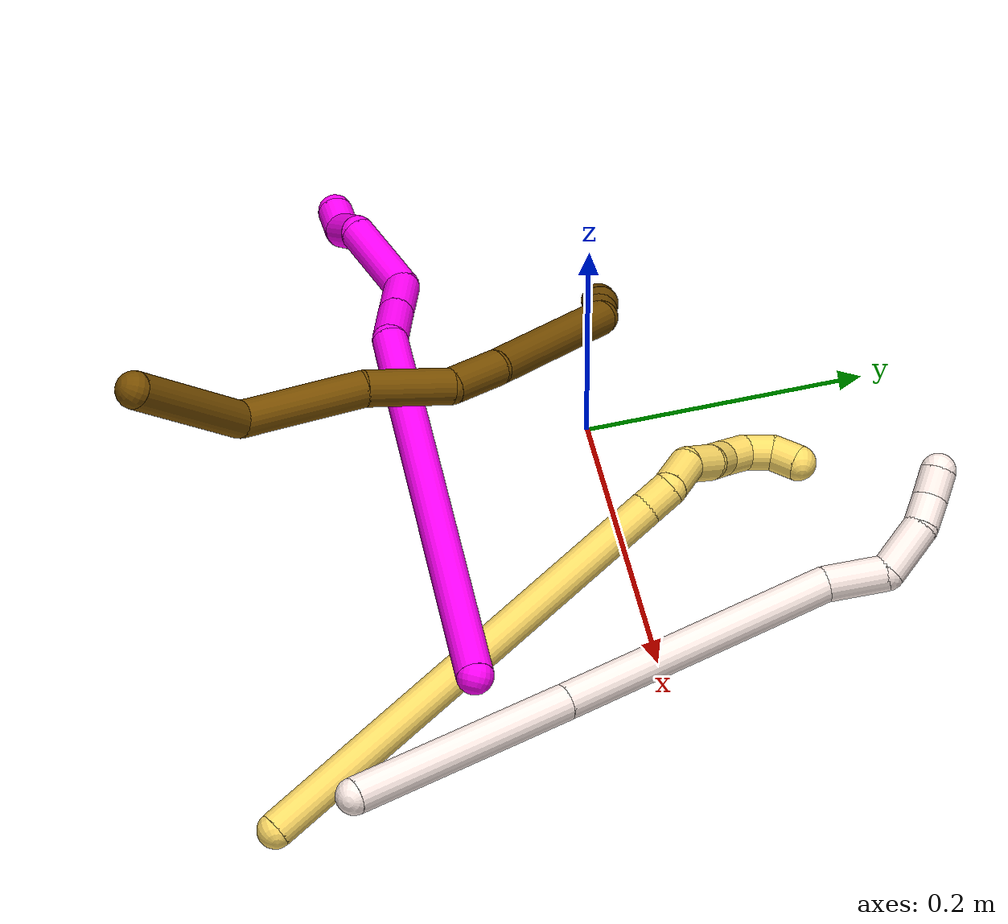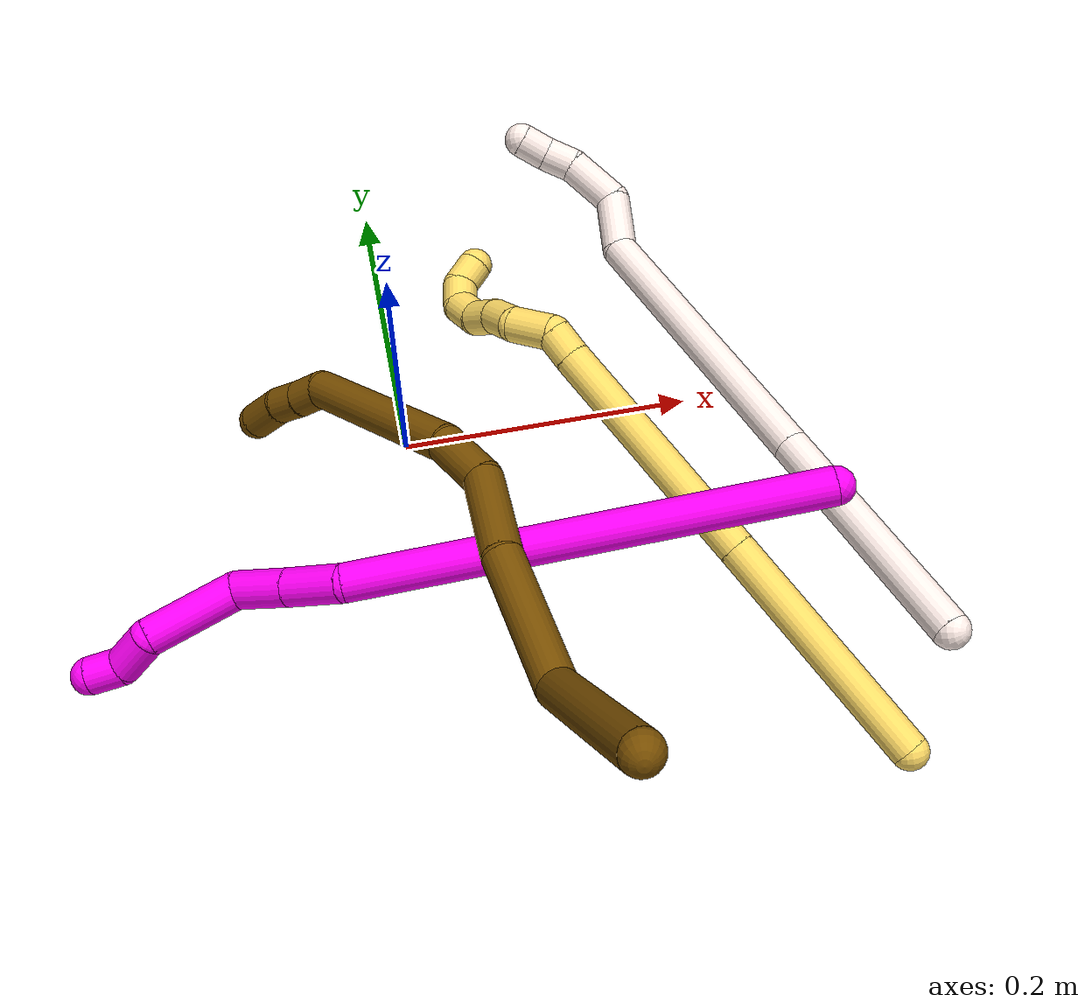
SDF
<sdf version="1.7">
 <world name="default">
  <model name="5">
   <static>0</static>
   <link name="5">
    <collision name="collision-cylinder-e_1_1_4">
     <pose>-0.065312 0.030821 -0.039168 -2.4749 -0.918962 1.92039</pose>
     <geometry><cylinder><radius>0.0125</radius><length>0.164314</length></cylinder></geometry>
     <surface>
      <friction><ode><mu>1.16</mu><mu2>1.16</mu2><slip1>0</slip1><slip2>0</slip2></ode></friction>
      <contact><ode><kp>1e+06</kp><kd>1</kd><max_vel>0</max_vel><min_depth>0.001</min_depth></ode></contact>
     </surface>
    </collision>
    <visual name="visual-cylinder-e_1_1_4">
     <pose>-0.065312 0.030821 -0.039168 -2.4749 -0.918962 1.92039</pose>
     <geometry><cylinder><radius>0.0125</radius><length>0.164314</length></cylinder></geometry>
     <material><ambient>1 0.858824 0.4 1</ambient></material>
    </visual>
    <collision name="collision-cylinder-e_2_4_5">
     <pose>-0.197448 0.093155 -0.118675 -2.47842 -0.9171 1.92355</pose>
     <geometry><cylinder><radius>0.0125</radius><length>0.168354</length></cylinder></geometry>
     <surface>
      <friction><ode><mu>1.16</mu><mu2>1.16</mu2><slip1>0</slip1><slip2>0</slip2></ode></friction>
      <contact><ode><kp>1e+06</kp><kd>1</kd><max_vel>0</max_vel><min_depth>0.001</min_depth></ode></contact>
     </surface>
    </collision>
    <visual name="visual-cylinder-e_2_4_5">
     <pose>-0.197448 0.093155 -0.118675 -2.47842 -0.9171 1.92355</pose>
     <geometry><cylinder><radius>0.0125</radius><length>0.168354</length></cylinder></geometry>
     <material><ambient>1 0.858824 0.4 1</ambient></material>
    </visual>
    <collision name="collision-cylinder-e_3_5_6">
     <pose>-0.273146 0.128251 -0.163671 -2.48575 -0.986139 2.01275</pose>
     <geometry><cylinder><radius>0.0125</radius><length>0.021285</length></cylinder></geometry>
     <surface>
      <friction><ode><mu>1.16</mu><mu2>1.16</mu2><slip1>0</slip1><slip2>0</slip2></ode></friction>
      <contact><ode><kp>1e+06</kp><kd>1</kd><max_vel>0</max_vel><min_depth>0.001</min_depth></ode></contact>
     </surface>
    </collision>
    <visual name="visual-cylinder-e_3_5_6">
     <pose>-0.273146 0.128251 -0.163671 -2.48575 -0.986139 2.01275</pose>
     <geometry><cylinder><radius>0.0125</radius><length>0.021285</length></cylinder></geometry>
     <material><ambient>1 0.858824 0.4 1</ambient></material>
    </visual>
    <collision name="collision-cylinder-e_4_6_7">
     <pose>-0.286399 0.139819 -0.181315 -2.59037 -0.279616 0.923462</pose>
     <geometry><cylinder><radius>0.0125</radius><length>0.031728</length></cylinder></geometry>
     <surface>
      <friction><ode><mu>1.16</mu><mu2>1.16</mu2><slip1>0</slip1><slip2>0</slip2></ode></friction>
      <contact><ode><kp>1e+06</kp><kd>1</kd><max_vel>0</max_vel><min_depth>0.001</min_depth></ode></contact>
     </surface>
    </collision>
    <visual name="visual-cylinder-e_4_6_7">
     <pose>-0.286399 0.139819 -0.181315 -2.59037 -0.279616 0.923462</pose>
     <geometry><cylinder><radius>0.0125</radius><length>0.031728</length></cylinder></geometry>
     <material><ambient>1 0.858824 0.4 1</ambient></material>
    </visual>
    <collision name="collision-cylinder-e_5_7_8">
     <pose>-0.293025 0.159484 -0.200844 -2.08122 -0.166364 0.282579</pose>
     <geometry><cylinder><radius>0.0125</radius><length>0.027146</length></cylinder></geometry>
     <surface>
      <friction><ode><mu>1.16</mu><mu2>1.16</mu2><slip1>0</slip1><slip2>0</slip2></ode></friction>
      <contact><ode><kp>1e+06</kp><kd>1</kd><max_vel>0</max_vel><min_depth>0.001</min_depth></ode></contact>
     </surface>
    </collision>
    <visual name="visual-cylinder-e_5_7_8">
     <pose>-0.293025 0.159484 -0.200844 -2.08122 -0.166364 0.282579</pose>
     <geometry><cylinder><radius>0.0125</radius><length>0.027146</length></cylinder></geometry>
     <material><ambient>1 0.858824 0.4 1</ambient></material>
    </visual>
    <collision name="collision-cylinder-e_6_8_9">
     <pose>-0.294848 0.179962 -0.215185 -2.29612 0.036137 -0.080294</pose>
     <geometry><cylinder><radius>0.0125</radius><length>0.023534</length></cylinder></geometry>
     <surface>
      <friction><ode><mu>1.16</mu><mu2>1.16</mu2><slip1>0</slip1><slip2>0</slip2></ode></friction>
      <contact><ode><kp>1e+06</kp><kd>1</kd><max_vel>0</max_vel><min_depth>0.001</min_depth></ode></contact>
     </surface>
    </collision>
    <visual name="visual-cylinder-e_6_8_9">
     <pose>-0.294848 0.179962 -0.215185 -2.29612 0.036137 -0.080294</pose>
     <geometry><cylinder><radius>0.0125</radius><length>0.023534</length></cylinder></geometry>
     <material><ambient>1 0.858824 0.4 1</ambient></material>
    </visual>
    <collision name="collision-cylinder-e_7_9_10">
     <pose>-0.298494 0.198034 -0.228547 -2.11106 -0.360116 0.622016</pose>
     <geometry><cylinder><radius>0.0125</radius><length>0.023108</length></cylinder></geometry>
     <surface>
      <friction><ode><mu>1.16</mu><mu2>1.16</mu2><slip1>0</slip1><slip2>0</slip2></ode></friction>
      <contact><ode><kp>1e+06</kp><kd>1</kd><max_vel>0</max_vel><min_depth>0.001</min_depth></ode></contact>
     </surface>
    </collision>
    <visual name="visual-cylinder-e_7_9_10">
     <pose>-0.298494 0.198034 -0.228547 -2.11106 -0.360116 0.622016</pose>
     <geometry><cylinder><radius>0.0125</radius><length>0.023108</length></cylinder></geometry>
     <material><ambient>1 0.858824 0.4 1</ambient></material>
    </visual>
    <collision name="collision-cylinder-e_8_10_11">
     <pose>-0.308992 0.215057 -0.233419 -1.48204 -0.690357 0.635683</pose>
     <geometry><cylinder><radius>0.0125</radius><length>0.020183</length></cylinder></geometry>
     <surface>
      <friction><ode><mu>1.16</mu><mu2>1.16</mu2><slip1>0</slip1><slip2>0</slip2></ode></friction>
      <contact><ode><kp>1e+06</kp><kd>1</kd><max_vel>0</max_vel><min_depth>0.001</min_depth></ode></contact>
     </surface>
    </collision>
    <visual name="visual-cylinder-e_8_10_11">
     <pose>-0.308992 0.215057 -0.233419 -1.48204 -0.690357 0.635683</pose>
     <geometry><cylinder><radius>0.0125</radius><length>0.020183</length></cylinder></geometry>
     <material><ambient>1 0.858824 0.4 1</ambient></material>
    </visual>
    <collision name="collision-cylinder-e_9_11_2">
     <pose>-0.320966 0.228298 -0.226204 -0.69951 -0.576754 0.215565</pose>
     <geometry><cylinder><radius>0.0125</radius><length>0.020348</length></cylinder></geometry>
     <surface>
      <friction><ode><mu>1.16</mu><mu2>1.16</mu2><slip1>0</slip1><slip2>0</slip2></ode></friction>
      <contact><ode><kp>1e+06</kp><kd>1</kd><max_vel>0</max_vel><min_depth>0.001</min_depth></ode></contact>
     </surface>
    </collision>
    <visual name="visual-cylinder-e_9_11_2">
     <pose>-0.320966 0.228298 -0.226204 -0.69951 -0.576754 0.215565</pose>
     <geometry><cylinder><radius>0.0125</radius><length>0.020348</length></cylinder></geometry>
     <material><ambient>1 0.858824 0.4 1</ambient></material>
    </visual>
    <collision name="collision-sphere-2">
     <pose>-0.326514 0.233789 -0.219678 0 -0 0</pose>
     <geometry><sphere><radius>0.0125</radius></sphere></geometry>
     <surface>
      <friction><ode><mu>1.16</mu><mu2>1.16</mu2><slip1>0</slip1><slip2>0</slip2></ode></friction>
      <contact><ode><kp>1e+06</kp><kd>1</kd><max_vel>0</max_vel><min_depth>0.001</min_depth></ode></contact>
     </surface>
    </collision>
    <visual name="visual-sphere-2">
     <pose>-0.326514 0.233789 -0.219678 0 -0 0</pose>
     <geometry><sphere><radius>0.0125</radius></sphere></geometry>
     <material><ambient>1 0.858824 0.4 1</ambient></material>
    </visual>
    <collision name="collision-sphere-11">
     <pose>-0.315418 0.222808 -0.232729 0 -0 0</pose>
     <geometry><sphere><radius>0.0125</radius></sphere></geometry>
     <surface>
      <friction><ode><mu>1.16</mu><mu2>1.16</mu2><slip1>0</slip1><slip2>0</slip2></ode></friction>
      <contact><ode><kp>1e+06</kp><kd>1</kd><max_vel>0</max_vel><min_depth>0.001</min_depth></ode></contact>
     </surface>
    </collision>
    <visual name="visual-sphere-11">
     <pose>-0.315418 0.222808 -0.232729 0 -0 0</pose>
     <geometry><sphere><radius>0.0125</radius></sphere></geometry>
     <material><ambient>1 0.858824 0.4 1</ambient></material>
    </visual>
    <collision name="collision-sphere-10">
     <pose>-0.302565 0.207307 -0.234109 0 -0 0</pose>
     <geometry><sphere><radius>0.0125</radius></sphere></geometry>
     <surface>
      <friction><ode><mu>1.16</mu><mu2>1.16</mu2><slip1>0</slip1><slip2>0</slip2></ode></friction>
      <contact><ode><kp>1e+06</kp><kd>1</kd><max_vel>0</max_vel><min_depth>0.001</min_depth></ode></contact>
     </surface>
    </collision>
    <visual name="visual-sphere-10">
     <pose>-0.302565 0.207307 -0.234109 0 -0 0</pose>
     <geometry><sphere><radius>0.0125</radius></sphere></geometry>
     <material><ambient>1 0.858824 0.4 1</ambient></material>
    </visual>
    <collision name="collision-sphere-9">
     <pose>-0.294423 0.188762 -0.222985 0 -0 0</pose>
     <geometry><sphere><radius>0.0125</radius></sphere></geometry>
     <surface>
      <friction><ode><mu>1.16</mu><mu2>1.16</mu2><slip1>0</slip1><slip2>0</slip2></ode></friction>
      <contact><ode><kp>1e+06</kp><kd>1</kd><max_vel>0</max_vel><min_depth>0.001</min_depth></ode></contact>
     </surface>
    </collision>
    <visual name="visual-sphere-9">
     <pose>-0.294423 0.188762 -0.222985 0 -0 0</pose>
     <geometry><sphere><radius>0.0125</radius></sphere></geometry>
     <material><ambient>1 0.858824 0.4 1</ambient></material>
    </visual>
    <collision name="collision-sphere-4">
     <pose>-0.130625 0.061642 -0.078335 0 -0 0</pose>
     <geometry><sphere><radius>0.0125</radius></sphere></geometry>
     <surface>
      <friction><ode><mu>1.16</mu><mu2>1.16</mu2><slip1>0</slip1><slip2>0</slip2></ode></friction>
      <contact><ode><kp>1e+06</kp><kd>1</kd><max_vel>0</max_vel><min_depth>0.001</min_depth></ode></contact>
     </surface>
    </collision>
    <visual name="visual-sphere-4">
     <pose>-0.130625 0.061642 -0.078335 0 -0 0</pose>
     <geometry><sphere><radius>0.0125</radius></sphere></geometry>
     <material><ambient>1 0.858824 0.4 1</ambient></material>
    </visual>
    <collision name="collision-sphere-1">
     <geometry><sphere><radius>0.0125</radius></sphere></geometry>
     <surface>
      <friction><ode><mu>1.16</mu><mu2>1.16</mu2><slip1>0</slip1><slip2>0</slip2></ode></friction>
      <contact><ode><kp>1e+06</kp><kd>1</kd><max_vel>0</max_vel><min_depth>0.001</min_depth></ode></contact>
     </surface>
    </collision>
    <visual name="visual-sphere-1">
     <geometry><sphere><radius>0.0125</radius></sphere></geometry>
     <material><ambient>1 0.858824 0.4 1</ambient></material>
    </visual>
    <collision name="collision-sphere-8">
     <pose>-0.295273 0.171163 -0.207384 0 -0 0</pose>
     <geometry><sphere><radius>0.0125</radius></sphere></geometry>
     <surface>
      <friction><ode><mu>1.16</mu><mu2>1.16</mu2><slip1>0</slip1><slip2>0</slip2></ode></friction>
      <contact><ode><kp>1e+06</kp><kd>1</kd><max_vel>0</max_vel><min_depth>0.001</min_depth></ode></contact>
     </surface>
    </collision>
    <visual name="visual-sphere-8">
     <pose>-0.295273 0.171163 -0.207384 0 -0 0</pose>
     <geometry><sphere><radius>0.0125</radius></sphere></geometry>
     <material><ambient>1 0.858824 0.4 1</ambient></material>
    </visual>
    <collision name="collision-sphere-5">
     <pose>-0.264271 0.124669 -0.159015 0 -0 0</pose>
     <geometry><sphere><radius>0.0125</radius></sphere></geometry>
     <surface>
      <friction><ode><mu>1.16</mu><mu2>1.16</mu2><slip1>0</slip1><slip2>0</slip2></ode></friction>
      <contact><ode><kp>1e+06</kp><kd>1</kd><max_vel>0</max_vel><min_depth>0.001</min_depth></ode></contact>
     </surface>
    </collision>
    <visual name="visual-sphere-5">
     <pose>-0.264271 0.124669 -0.159015 0 -0 0</pose>
     <geometry><sphere><radius>0.0125</radius></sphere></geometry>
     <material><ambient>1 0.858824 0.4 1</ambient></material>
    </visual>
    <collision name="collision-sphere-6">
     <pose>-0.282021 0.131833 -0.168326 0 -0 0</pose>
     <geometry><sphere><radius>0.0125</radius></sphere></geometry>
     <surface>
      <friction><ode><mu>1.16</mu><mu2>1.16</mu2><slip1>0</slip1><slip2>0</slip2></ode></friction>
      <contact><ode><kp>1e+06</kp><kd>1</kd><max_vel>0</max_vel><min_depth>0.001</min_depth></ode></contact>
     </surface>
    </collision>
    <visual name="visual-sphere-6">
     <pose>-0.282021 0.131833 -0.168326 0 -0 0</pose>
     <geometry><sphere><radius>0.0125</radius></sphere></geometry>
     <material><ambient>1 0.858824 0.4 1</ambient></material>
    </visual>
    <collision name="collision-sphere-7">
     <pose>-0.290778 0.147805 -0.194305 0 -0 0</pose>
     <geometry><sphere><radius>0.0125</radius></sphere></geometry>
     <surface>
      <friction><ode><mu>1.16</mu><mu2>1.16</mu2><slip1>0</slip1><slip2>0</slip2></ode></friction>
      <contact><ode><kp>1e+06</kp><kd>1</kd><max_vel>0</max_vel><min_depth>0.001</min_depth></ode></contact>
     </surface>
    </collision>
    <visual name="visual-sphere-7">
     <pose>-0.290778 0.147805 -0.194305 0 -0 0</pose>
     <geometry><sphere><radius>0.0125</radius></sphere></geometry>
     <material><ambient>1 0.858824 0.4 1</ambient></material>
    </visual>
    <inertial>
     <pose>-0.186864 0.10008 -0.121527 0 -0 0</pose>
     <mass>0.5</mass>
     <inertia>
      <ixx>0.000273</ixx>
      <ixy>0</ixy>
      <ixz>0</ixz>
      <iyy>0.001039</iyy>
      <iyz>0</iyz>
      <izz>0.000306</izz>
     </inertia>
    </inertial>
   </link>
   <pose>0.274342 -0.27783 0.01149 -1.3294 0.71789 -1.46657</pose>
  </model>
  <model name="10">
   <static>0</static>
   <link name="10">
    <collision name="collision-cylinder-e_1_1_4">
     <pose>-0.11334 0.008781 0.103404 -0.08472 -0.829421 0.037315</pose>
     <geometry><cylinder><radius>0.0125</radius><length>0.307347</length></cylinder></geometry>
     <surface>
      <friction><ode><mu>1.16</mu><mu2>1.16</mu2><slip1>0</slip1><slip2>0</slip2></ode></friction>
      <contact><ode><kp>1e+06</kp><kd>1</kd><max_vel>0</max_vel><min_depth>0.001</min_depth></ode></contact>
     </surface>
    </collision>
    <visual name="visual-cylinder-e_1_1_4">
     <pose>-0.11334 0.008781 0.103404 -0.08472 -0.829421 0.037315</pose>
     <geometry><cylinder><radius>0.0125</radius><length>0.307347</length></cylinder></geometry>
     <material><ambient>1 0 0.964706 1</ambient></material>
    </visual>
    <collision name="collision-cylinder-e_2_4_5">
     <pose>-0.241118 0.026192 0.217191 -0.693426 -0.818916 0.311073</pose>
     <geometry><cylinder><radius>0.0125</radius><length>0.039533</length></cylinder></geometry>
     <surface>
      <friction><ode><mu>1.16</mu><mu2>1.16</mu2><slip1>0</slip1><slip2>0</slip2></ode></friction>
      <contact><ode><kp>1e+06</kp><kd>1</kd><max_vel>0</max_vel><min_depth>0.001</min_depth></ode></contact>
     </surface>
    </collision>
    <visual name="visual-cylinder-e_2_4_5">
     <pose>-0.241118 0.026192 0.217191 -0.693426 -0.818916 0.311073</pose>
     <geometry><cylinder><radius>0.0125</radius><length>0.039533</length></cylinder></geometry>
     <material><ambient>1 0 0.964706 1</ambient></material>
    </visual>
    <collision name="collision-cylinder-e_3_5_6">
     <pose>-0.269585 0.043387 0.238329 -0.672541 -0.795453 0.291615</pose>
     <geometry><cylinder><radius>0.0125</radius><length>0.039287</length></cylinder></geometry>
     <surface>
      <friction><ode><mu>1.16</mu><mu2>1.16</mu2><slip1>0</slip1><slip2>0</slip2></ode></friction>
      <contact><ode><kp>1e+06</kp><kd>1</kd><max_vel>0</max_vel><min_depth>0.001</min_depth></ode></contact>
     </surface>
    </collision>
    <visual name="visual-cylinder-e_3_5_6">
     <pose>-0.269585 0.043387 0.238329 -0.672541 -0.795453 0.291615</pose>
     <geometry><cylinder><radius>0.0125</radius><length>0.039287</length></cylinder></geometry>
     <material><ambient>1 0 0.964706 1</ambient></material>
    </visual>
    <collision name="collision-cylinder-e_4_6_7">
     <pose>-0.308872 0.043847 0.265192 0.466269 -0.950795 -0.243262</pose>
     <geometry><cylinder><radius>0.0125</radius><length>0.062068</length></cylinder></geometry>
     <surface>
      <friction><ode><mu>1.16</mu><mu2>1.16</mu2><slip1>0</slip1><slip2>0</slip2></ode></friction>
      <contact><ode><kp>1e+06</kp><kd>1</kd><max_vel>0</max_vel><min_depth>0.001</min_depth></ode></contact>
     </surface>
    </collision>
    <visual name="visual-cylinder-e_4_6_7">
     <pose>-0.308872 0.043847 0.265192 0.466269 -0.950795 -0.243262</pose>
     <geometry><cylinder><radius>0.0125</radius><length>0.062068</length></cylinder></geometry>
     <material><ambient>1 0 0.964706 1</ambient></material>
    </visual>
    <collision name="collision-cylinder-e_5_7_8">
     <pose>-0.348556 0.037999 0.281867 -1.32424 -1.41075 1.17198</pose>
     <geometry><cylinder><radius>0.0125</radius><length>0.029226</length></cylinder></geometry>
     <surface>
      <friction><ode><mu>1.16</mu><mu2>1.16</mu2><slip1>0</slip1><slip2>0</slip2></ode></friction>
      <contact><ode><kp>1e+06</kp><kd>1</kd><max_vel>0</max_vel><min_depth>0.001</min_depth></ode></contact>
     </surface>
    </collision>
    <visual name="visual-cylinder-e_5_7_8">
     <pose>-0.348556 0.037999 0.281867 -1.32424 -1.41075 1.17198</pose>
     <geometry><cylinder><radius>0.0125</radius><length>0.029226</length></cylinder></geometry>
     <material><ambient>1 0 0.964706 1</ambient></material>
    </visual>
    <collision name="collision-cylinder-e_6_8_2">
     <pose>-0.372114 0.040968 0.289 -0.107912 -0.944784 0.05518</pose>
     <geometry><cylinder><radius>0.0125</radius><length>0.02254</length></cylinder></geometry>
     <surface>
      <friction><ode><mu>1.16</mu><mu2>1.16</mu2><slip1>0</slip1><slip2>0</slip2></ode></friction>
      <contact><ode><kp>1e+06</kp><kd>1</kd><max_vel>0</max_vel><min_depth>0.001</min_depth></ode></contact>
     </surface>
    </collision>
    <visual name="visual-cylinder-e_6_8_2">
     <pose>-0.372114 0.040968 0.289 -0.107912 -0.944784 0.05518</pose>
     <geometry><cylinder><radius>0.0125</radius><length>0.02254</length></cylinder></geometry>
     <material><ambient>1 0 0.964706 1</ambient></material>
    </visual>
    <collision name="collision-sphere-2">
     <pose>-0.381247 0.041679 0.295565 0 -0 0</pose>
     <geometry><sphere><radius>0.0125</radius></sphere></geometry>
     <surface>
      <friction><ode><mu>1.16</mu><mu2>1.16</mu2><slip1>0</slip1><slip2>0</slip2></ode></friction>
      <contact><ode><kp>1e+06</kp><kd>1</kd><max_vel>0</max_vel><min_depth>0.001</min_depth></ode></contact>
     </surface>
    </collision>
    <visual name="visual-sphere-2">
     <pose>-0.381247 0.041679 0.295565 0 -0 0</pose>
     <geometry><sphere><radius>0.0125</radius></sphere></geometry>
     <material><ambient>1 0 0.964706 1</ambient></material>
    </visual>
    <collision name="collision-sphere-4">
     <pose>-0.226681 0.017563 0.206808 0 -0 0</pose>
     <geometry><sphere><radius>0.0125</radius></sphere></geometry>
     <surface>
      <friction><ode><mu>1.16</mu><mu2>1.16</mu2><slip1>0</slip1><slip2>0</slip2></ode></friction>
      <contact><ode><kp>1e+06</kp><kd>1</kd><max_vel>0</max_vel><min_depth>0.001</min_depth></ode></contact>
     </surface>
    </collision>
    <visual name="visual-sphere-4">
     <pose>-0.226681 0.017563 0.206808 0 -0 0</pose>
     <geometry><sphere><radius>0.0125</radius></sphere></geometry>
     <material><ambient>1 0 0.964706 1</ambient></material>
    </visual>
    <collision name="collision-sphere-1">
     <geometry><sphere><radius>0.0125</radius></sphere></geometry>
     <surface>
      <friction><ode><mu>1.16</mu><mu2>1.16</mu2><slip1>0</slip1><slip2>0</slip2></ode></friction>
      <contact><ode><kp>1e+06</kp><kd>1</kd><max_vel>0</max_vel><min_depth>0.001</min_depth></ode></contact>
     </surface>
    </collision>
    <visual name="visual-sphere-1">
     <geometry><sphere><radius>0.0125</radius></sphere></geometry>
     <material><ambient>1 0 0.964706 1</ambient></material>
    </visual>
    <collision name="collision-sphere-8">
     <pose>-0.362982 0.040257 0.282435 0 -0 0</pose>
     <geometry><sphere><radius>0.0125</radius></sphere></geometry>
     <surface>
      <friction><ode><mu>1.16</mu><mu2>1.16</mu2><slip1>0</slip1><slip2>0</slip2></ode></friction>
      <contact><ode><kp>1e+06</kp><kd>1</kd><max_vel>0</max_vel><min_depth>0.001</min_depth></ode></contact>
     </surface>
    </collision>
    <visual name="visual-sphere-8">
     <pose>-0.362982 0.040257 0.282435 0 -0 0</pose>
     <geometry><sphere><radius>0.0125</radius></sphere></geometry>
     <material><ambient>1 0 0.964706 1</ambient></material>
    </visual>
    <collision name="collision-sphere-5">
     <pose>-0.255556 0.034821 0.227574 0 -0 0</pose>
     <geometry><sphere><radius>0.0125</radius></sphere></geometry>
     <surface>
      <friction><ode><mu>1.16</mu><mu2>1.16</mu2><slip1>0</slip1><slip2>0</slip2></ode></friction>
      <contact><ode><kp>1e+06</kp><kd>1</kd><max_vel>0</max_vel><min_depth>0.001</min_depth></ode></contact>
     </surface>
    </collision>
    <visual name="visual-sphere-5">
     <pose>-0.255556 0.034821 0.227574 0 -0 0</pose>
     <geometry><sphere><radius>0.0125</radius></sphere></geometry>
     <material><ambient>1 0 0.964706 1</ambient></material>
    </visual>
    <collision name="collision-sphere-6">
     <pose>-0.283614 0.051953 0.249085 0 -0 0</pose>
     <geometry><sphere><radius>0.0125</radius></sphere></geometry>
     <surface>
      <friction><ode><mu>1.16</mu><mu2>1.16</mu2><slip1>0</slip1><slip2>0</slip2></ode></friction>
      <contact><ode><kp>1e+06</kp><kd>1</kd><max_vel>0</max_vel><min_depth>0.001</min_depth></ode></contact>
     </surface>
    </collision>
    <visual name="visual-sphere-6">
     <pose>-0.283614 0.051953 0.249085 0 -0 0</pose>
     <geometry><sphere><radius>0.0125</radius></sphere></geometry>
     <material><ambient>1 0 0.964706 1</ambient></material>
    </visual>
    <collision name="collision-sphere-7">
     <pose>-0.33413 0.03574 0.281299 0 -0 0</pose>
     <geometry><sphere><radius>0.0125</radius></sphere></geometry>
     <surface>
      <friction><ode><mu>1.16</mu><mu2>1.16</mu2><slip1>0</slip1><slip2>0</slip2></ode></friction>
      <contact><ode><kp>1e+06</kp><kd>1</kd><max_vel>0</max_vel><min_depth>0.001</min_depth></ode></contact>
     </surface>
    </collision>
    <visual name="visual-sphere-7">
     <pose>-0.33413 0.03574 0.281299 0 -0 0</pose>
     <geometry><sphere><radius>0.0125</radius></sphere></geometry>
     <material><ambient>1 0 0.964706 1</ambient></material>
    </visual>
    <inertial>
     <pose>-0.185406 0.020389 0.161884 0 -0 0</pose>
     <mass>0.5</mass>
     <inertia>
      <ixx>0.001695</ixx>
      <ixy>0</ixy>
      <ixz>0</ixz>
      <iyy>0.002529</iyy>
      <iyz>0</iyz>
      <izz>0.001709</izz>
     </inertia>
    </inertial>
   </link>
   <pose>0.249989 -0.136526 0.11102 -0.831368 -0.654944 0.540518</pose>
  </model>
  <model name="11">
   <static>0</static>
   <link name="11">
    <collision name="collision-cylinder-e_1_1_4">
     <pose>0.010602 0.056573 -0.056802 -2.35822 0.131486 -0.316144</pose>
     <geometry><cylinder><radius>0.0125</radius><length>0.161733</length></cylinder></geometry>
     <surface>
      <friction><ode><mu>1.16</mu><mu2>1.16</mu2><slip1>0</slip1><slip2>0</slip2></ode></friction>
      <contact><ode><kp>1e+06</kp><kd>1</kd><max_vel>0</max_vel><min_depth>0.001</min_depth></ode></contact>
     </surface>
    </collision>
    <visual name="visual-cylinder-e_1_1_4">
     <pose>0.010602 0.056573 -0.056802 -2.35822 0.131486 -0.316144</pose>
     <geometry><cylinder><radius>0.0125</radius><length>0.161733</length></cylinder></geometry>
     <material><ambient>1 0.933333 0.909804 1</ambient></material>
    </visual>
    <collision name="collision-cylinder-e_2_4_5">
     <pose>0.034388 0.18763 -0.187987 -2.35551 0.124596 -0.298661</pose>
     <geometry><cylinder><radius>0.0125</radius><length>0.212173</length></cylinder></geometry>
     <surface>
      <friction><ode><mu>1.16</mu><mu2>1.16</mu2><slip1>0</slip1><slip2>0</slip2></ode></friction>
      <contact><ode><kp>1e+06</kp><kd>1</kd><max_vel>0</max_vel><min_depth>0.001</min_depth></ode></contact>
     </surface>
    </collision>
    <visual name="visual-cylinder-e_2_4_5">
     <pose>0.034388 0.18763 -0.187987 -2.35551 0.124596 -0.298661</pose>
     <geometry><cylinder><radius>0.0125</radius><length>0.212173</length></cylinder></geometry>
     <material><ambient>1 0.933333 0.909804 1</ambient></material>
    </visual>
    <collision name="collision-cylinder-e_3_5_6">
     <pose>0.05394 0.281767 -0.268648 -1.88004 0.299366 -0.407283</pose>
     <geometry><cylinder><radius>0.0125</radius><length>0.043186</length></cylinder></geometry>
     <surface>
      <friction><ode><mu>1.16</mu><mu2>1.16</mu2><slip1>0</slip1><slip2>0</slip2></ode></friction>
      <contact><ode><kp>1e+06</kp><kd>1</kd><max_vel>0</max_vel><min_depth>0.001</min_depth></ode></contact>
     </surface>
    </collision>
    <visual name="visual-cylinder-e_3_5_6">
     <pose>0.05394 0.281767 -0.268648 -1.88004 0.299366 -0.407283</pose>
     <geometry><cylinder><radius>0.0125</radius><length>0.043186</length></cylinder></geometry>
     <material><ambient>1 0.933333 0.909804 1</ambient></material>
    </visual>
    <collision name="collision-cylinder-e_4_6_7">
     <pose>0.052908 0.315768 -0.286684 -2.2573 -0.379612 0.77103</pose>
     <geometry><cylinder><radius>0.0125</radius><length>0.039942</length></cylinder></geometry>
     <surface>
      <friction><ode><mu>1.16</mu><mu2>1.16</mu2><slip1>0</slip1><slip2>0</slip2></ode></friction>
      <contact><ode><kp>1e+06</kp><kd>1</kd><max_vel>0</max_vel><min_depth>0.001</min_depth></ode></contact>
     </surface>
    </collision>
    <visual name="visual-cylinder-e_4_6_7">
     <pose>0.052908 0.315768 -0.286684 -2.2573 -0.379612 0.77103</pose>
     <geometry><cylinder><radius>0.0125</radius><length>0.039942</length></cylinder></geometry>
     <material><ambient>1 0.933333 0.909804 1</ambient></material>
    </visual>
    <collision name="collision-cylinder-e_5_7_8">
     <pose>0.039359 0.335382 -0.30581 -2.52103 -0.596401 1.52854</pose>
     <geometry><cylinder><radius>0.0125</radius><length>0.021894</length></cylinder></geometry>
     <surface>
      <friction><ode><mu>1.16</mu><mu2>1.16</mu2><slip1>0</slip1><slip2>0</slip2></ode></friction>
      <contact><ode><kp>1e+06</kp><kd>1</kd><max_vel>0</max_vel><min_depth>0.001</min_depth></ode></contact>
     </surface>
    </collision>
    <visual name="visual-cylinder-e_5_7_8">
     <pose>0.039359 0.335382 -0.30581 -2.52103 -0.596401 1.52854</pose>
     <geometry><cylinder><radius>0.0125</radius><length>0.021894</length></cylinder></geometry>
     <material><ambient>1 0.933333 0.909804 1</ambient></material>
    </visual>
    <collision name="collision-cylinder-e_6_8_2">
     <pose>0.026388 0.346411 -0.31877 -2.34117 -0.704294 1.43041</pose>
     <geometry><cylinder><radius>0.0125</radius><length>0.021072</length></cylinder></geometry>
     <surface>
      <friction><ode><mu>1.16</mu><mu2>1.16</mu2><slip1>0</slip1><slip2>0</slip2></ode></friction>
      <contact><ode><kp>1e+06</kp><kd>1</kd><max_vel>0</max_vel><min_depth>0.001</min_depth></ode></contact>
     </surface>
    </collision>
    <visual name="visual-cylinder-e_6_8_2">
     <pose>0.026388 0.346411 -0.31877 -2.34117 -0.704294 1.43041</pose>
     <geometry><cylinder><radius>0.0125</radius><length>0.021072</length></cylinder></geometry>
     <material><ambient>1 0.933333 0.909804 1</ambient></material>
    </visual>
    <collision name="collision-sphere-2">
     <pose>0.019566 0.352173 -0.324362 0 -0 0</pose>
     <geometry><sphere><radius>0.0125</radius></sphere></geometry>
     <surface>
      <friction><ode><mu>1.16</mu><mu2>1.16</mu2><slip1>0</slip1><slip2>0</slip2></ode></friction>
      <contact><ode><kp>1e+06</kp><kd>1</kd><max_vel>0</max_vel><min_depth>0.001</min_depth></ode></contact>
     </surface>
    </collision>
    <visual name="visual-sphere-2">
     <pose>0.019566 0.352173 -0.324362 0 -0 0</pose>
     <geometry><sphere><radius>0.0125</radius></sphere></geometry>
     <material><ambient>1 0.933333 0.909804 1</ambient></material>
    </visual>
    <collision name="collision-sphere-4">
     <pose>0.021204 0.113146 -0.113604 0 -0 0</pose>
     <geometry><sphere><radius>0.0125</radius></sphere></geometry>
     <surface>
      <friction><ode><mu>1.16</mu><mu2>1.16</mu2><slip1>0</slip1><slip2>0</slip2></ode></friction>
      <contact><ode><kp>1e+06</kp><kd>1</kd><max_vel>0</max_vel><min_depth>0.001</min_depth></ode></contact>
     </surface>
    </collision>
    <visual name="visual-sphere-4">
     <pose>0.021204 0.113146 -0.113604 0 -0 0</pose>
     <geometry><sphere><radius>0.0125</radius></sphere></geometry>
     <material><ambient>1 0.933333 0.909804 1</ambient></material>
    </visual>
    <collision name="collision-sphere-1">
     <geometry><sphere><radius>0.0125</radius></sphere></geometry>
     <surface>
      <friction><ode><mu>1.16</mu><mu2>1.16</mu2><slip1>0</slip1><slip2>0</slip2></ode></friction>
      <contact><ode><kp>1e+06</kp><kd>1</kd><max_vel>0</max_vel><min_depth>0.001</min_depth></ode></contact>
     </surface>
    </collision>
    <visual name="visual-sphere-1">
     <geometry><sphere><radius>0.0125</radius></sphere></geometry>
     <material><ambient>1 0.933333 0.909804 1</ambient></material>
    </visual>
    <collision name="collision-sphere-8">
     <pose>0.03321 0.340649 -0.313179 0 -0 0</pose>
     <geometry><sphere><radius>0.0125</radius></sphere></geometry>
     <surface>
      <friction><ode><mu>1.16</mu><mu2>1.16</mu2><slip1>0</slip1><slip2>0</slip2></ode></friction>
      <contact><ode><kp>1e+06</kp><kd>1</kd><max_vel>0</max_vel><min_depth>0.001</min_depth></ode></contact>
     </surface>
    </collision>
    <visual name="visual-sphere-8">
     <pose>0.03321 0.340649 -0.313179 0 -0 0</pose>
     <geometry><sphere><radius>0.0125</radius></sphere></geometry>
     <material><ambient>1 0.933333 0.909804 1</ambient></material>
    </visual>
    <collision name="collision-sphere-5">
     <pose>0.047572 0.262114 -0.262369 0 -0 0</pose>
     <geometry><sphere><radius>0.0125</radius></sphere></geometry>
     <surface>
      <friction><ode><mu>1.16</mu><mu2>1.16</mu2><slip1>0</slip1><slip2>0</slip2></ode></friction>
      <contact><ode><kp>1e+06</kp><kd>1</kd><max_vel>0</max_vel><min_depth>0.001</min_depth></ode></contact>
     </surface>
    </collision>
    <visual name="visual-sphere-5">
     <pose>0.047572 0.262114 -0.262369 0 -0 0</pose>
     <geometry><sphere><radius>0.0125</radius></sphere></geometry>
     <material><ambient>1 0.933333 0.909804 1</ambient></material>
    </visual>
    <collision name="collision-sphere-6">
     <pose>0.060308 0.301421 -0.274927 0 -0 0</pose>
     <geometry><sphere><radius>0.0125</radius></sphere></geometry>
     <surface>
      <friction><ode><mu>1.16</mu><mu2>1.16</mu2><slip1>0</slip1><slip2>0</slip2></ode></friction>
      <contact><ode><kp>1e+06</kp><kd>1</kd><max_vel>0</max_vel><min_depth>0.001</min_depth></ode></contact>
     </surface>
    </collision>
    <visual name="visual-sphere-6">
     <pose>0.060308 0.301421 -0.274927 0 -0 0</pose>
     <geometry><sphere><radius>0.0125</radius></sphere></geometry>
     <material><ambient>1 0.933333 0.909804 1</ambient></material>
    </visual>
    <collision name="collision-sphere-7">
     <pose>0.045507 0.330116 -0.298442 0 -0 0</pose>
     <geometry><sphere><radius>0.0125</radius></sphere></geometry>
     <surface>
      <friction><ode><mu>1.16</mu><mu2>1.16</mu2><slip1>0</slip1><slip2>0</slip2></ode></friction>
      <contact><ode><kp>1e+06</kp><kd>1</kd><max_vel>0</max_vel><min_depth>0.001</min_depth></ode></contact>
     </surface>
    </collision>
    <visual name="visual-sphere-7">
     <pose>0.045507 0.330116 -0.298442 0 -0 0</pose>
     <geometry><sphere><radius>0.0125</radius></sphere></geometry>
     <material><ambient>1 0.933333 0.909804 1</ambient></material>
    </visual>
    <inertial>
     <pose>0.029743 0.176766 -0.171075 0 -0 0</pose>
     <mass>0.5</mass>
     <inertia><ixx>0.000773</ixx><ixy>0</ixy><ixz>0</ixz><iyy>-0.00107</iyy><iyz>0</iyz><izz>-0.001</izz></inertia>
    </inertial>
   </link>
   <pose>0.300431 -0.227928 0.07843 0.697105 0.646904 0.381754</pose>
  </model>
  <model name="12">
   <static>0</static>
   <link name="12">
    <collision name="collision-cylinder-e_1_1_4">
     <pose>-0.020168 0.000826 -0.051569 -3.12557 -0.372756 3.05669</pose>
     <geometry><cylinder><radius>0.0125</radius><length>0.110757</length></cylinder></geometry>
     <surface>
      <friction><ode><mu>1.16</mu><mu2>1.16</mu2><slip1>0</slip1><slip2>0</slip2></ode></friction>
      <contact><ode><kp>1e+06</kp><kd>1</kd><max_vel>0</max_vel><min_depth>0.001</min_depth></ode></contact>
     </surface>
    </collision>
    <visual name="visual-cylinder-e_1_1_4">
     <pose>-0.020168 0.000826 -0.051569 -3.12557 -0.372756 3.05669</pose>
     <geometry><cylinder><radius>0.0125</radius><length>0.110757</length></cylinder></geometry>
     <material><ambient>0.466667 0.301961 0 1</ambient></material>
    </visual>
    <collision name="collision-cylinder-e_2_4_5">
     <pose>-0.033755 0.025388 -0.139384 -2.56181 0.15073 -0.495852</pose>
     <geometry><cylinder><radius>0.0125</radius><length>0.087646</length></cylinder></geometry>
     <surface>
      <friction><ode><mu>1.16</mu><mu2>1.16</mu2><slip1>0</slip1><slip2>0</slip2></ode></friction>
      <contact><ode><kp>1e+06</kp><kd>1</kd><max_vel>0</max_vel><min_depth>0.001</min_depth></ode></contact>
     </surface>
    </collision>
    <visual name="visual-cylinder-e_2_4_5">
     <pose>-0.033755 0.025388 -0.139384 -2.56181 0.15073 -0.495852</pose>
     <geometry><cylinder><radius>0.0125</radius><length>0.087646</length></cylinder></geometry>
     <material><ambient>0.466667 0.301961 0 1</ambient></material>
    </visual>
    <collision name="collision-cylinder-e_3_5_6">
     <pose>-0.021673 0.059953 -0.203721 -2.77366 0.180754 -0.90645</pose>
     <geometry><cylinder><radius>0.0125</radius><length>0.06121</length></cylinder></geometry>
     <surface>
      <friction><ode><mu>1.16</mu><mu2>1.16</mu2><slip1>0</slip1><slip2>0</slip2></ode></friction>
      <contact><ode><kp>1e+06</kp><kd>1</kd><max_vel>0</max_vel><min_depth>0.001</min_depth></ode></contact>
     </surface>
    </collision>
    <visual name="visual-cylinder-e_3_5_6">
     <pose>-0.021673 0.059953 -0.203721 -2.77366 0.180754 -0.90645</pose>
     <geometry><cylinder><radius>0.0125</radius><length>0.06121</length></cylinder></geometry>
     <material><ambient>0.466667 0.301961 0 1</ambient></material>
    </visual>
    <collision name="collision-cylinder-e_4_6_7">
     <pose>-0.020345 0.081879 -0.248827 -2.56365 -0.202674 0.659129</pose>
     <geometry><cylinder><radius>0.0125</radius><length>0.041476</length></cylinder></geometry>
     <surface>
      <friction><ode><mu>1.16</mu><mu2>1.16</mu2><slip1>0</slip1><slip2>0</slip2></ode></friction>
      <contact><ode><kp>1e+06</kp><kd>1</kd><max_vel>0</max_vel><min_depth>0.001</min_depth></ode></contact>
     </surface>
    </collision>
    <visual name="visual-cylinder-e_4_6_7">
     <pose>-0.020345 0.081879 -0.248827 -2.56365 -0.202674 0.659129</pose>
     <geometry><cylinder><radius>0.0125</radius><length>0.041476</length></cylinder></geometry>
     <material><ambient>0.466667 0.301961 0 1</ambient></material>
    </visual>
    <collision name="collision-cylinder-e_5_7_8">
     <pose>-0.052682 0.12127 -0.317081 -2.63708 -0.448443 1.44871</pose>
     <geometry><cylinder><radius>0.0125</radius><length>0.12991</length></cylinder></geometry>
     <surface>
      <friction><ode><mu>1.16</mu><mu2>1.16</mu2><slip1>0</slip1><slip2>0</slip2></ode></friction>
      <contact><ode><kp>1e+06</kp><kd>1</kd><max_vel>0</max_vel><min_depth>0.001</min_depth></ode></contact>
     </surface>
    </collision>
    <visual name="visual-cylinder-e_5_7_8">
     <pose>-0.052682 0.12127 -0.317081 -2.63708 -0.448443 1.44871</pose>
     <geometry><cylinder><radius>0.0125</radius><length>0.12991</length></cylinder></geometry>
     <material><ambient>0.466667 0.301961 0 1</ambient></material>
    </visual>
    <collision name="collision-cylinder-e_6_8_9">
     <pose>-0.089972 0.151666 -0.373291 -2.74151 -1.03688 2.45864</pose>
     <geometry><cylinder><radius>0.0125</radius><length>0.021208</length></cylinder></geometry>
     <surface>
      <friction><ode><mu>1.16</mu><mu2>1.16</mu2><slip1>0</slip1><slip2>0</slip2></ode></friction>
      <contact><ode><kp>1e+06</kp><kd>1</kd><max_vel>0</max_vel><min_depth>0.001</min_depth></ode></contact>
     </surface>
    </collision>
    <visual name="visual-cylinder-e_6_8_9">
     <pose>-0.089972 0.151666 -0.373291 -2.74151 -1.03688 2.45864</pose>
     <geometry><cylinder><radius>0.0125</radius><length>0.021208</length></cylinder></geometry>
     <material><ambient>0.466667 0.301961 0 1</ambient></material>
    </visual>
    <collision name="collision-cylinder-e_7_9_10">
     <pose>-0.107414 0.156358 -0.383233 -2.66125 -0.977565 2.27851</pose>
     <geometry><cylinder><radius>0.0125</radius><length>0.020054</length></cylinder></geometry>
     <surface>
      <friction><ode><mu>1.16</mu><mu2>1.16</mu2><slip1>0</slip1><slip2>0</slip2></ode></friction>
      <contact><ode><kp>1e+06</kp><kd>1</kd><max_vel>0</max_vel><min_depth>0.001</min_depth></ode></contact>
     </surface>
    </collision>
    <visual name="visual-cylinder-e_7_9_10">
     <pose>-0.107414 0.156358 -0.383233 -2.66125 -0.977565 2.27851</pose>
     <geometry><cylinder><radius>0.0125</radius><length>0.020054</length></cylinder></geometry>
     <material><ambient>0.466667 0.301961 0 1</ambient></material>
    </visual>
    <collision name="collision-cylinder-e_8_10_2">
     <pose>-0.127741 0.159614 -0.395103 -3.04542 -1.04754 2.97534</pose>
     <geometry><cylinder><radius>0.0125</radius><length>0.027739</length></cylinder></geometry>
     <surface>
      <friction><ode><mu>1.16</mu><mu2>1.16</mu2><slip1>0</slip1><slip2>0</slip2></ode></friction>
      <contact><ode><kp>1e+06</kp><kd>1</kd><max_vel>0</max_vel><min_depth>0.001</min_depth></ode></contact>
     </surface>
    </collision>
    <visual name="visual-cylinder-e_8_10_2">
     <pose>-0.127741 0.159614 -0.395103 -3.04542 -1.04754 2.97534</pose>
     <geometry><cylinder><radius>0.0125</radius><length>0.027739</length></cylinder></geometry>
     <material><ambient>0.466667 0.301961 0 1</ambient></material>
    </visual>
    <collision name="collision-sphere-2">
     <pose>-0.139755 0.160279 -0.402001 0 -0 0</pose>
     <geometry><sphere><radius>0.0125</radius></sphere></geometry>
     <surface>
      <friction><ode><mu>1.16</mu><mu2>1.16</mu2><slip1>0</slip1><slip2>0</slip2></ode></friction>
      <contact><ode><kp>1e+06</kp><kd>1</kd><max_vel>0</max_vel><min_depth>0.001</min_depth></ode></contact>
     </surface>
    </collision>
    <visual name="visual-sphere-2">
     <pose>-0.139755 0.160279 -0.402001 0 -0 0</pose>
     <geometry><sphere><radius>0.0125</radius></sphere></geometry>
     <material><ambient>0.466667 0.301961 0 1</ambient></material>
    </visual>
    <collision name="collision-sphere-10">
     <pose>-0.115728 0.158948 -0.388204 0 -0 0</pose>
     <geometry><sphere><radius>0.0125</radius></sphere></geometry>
     <surface>
      <friction><ode><mu>1.16</mu><mu2>1.16</mu2><slip1>0</slip1><slip2>0</slip2></ode></friction>
      <contact><ode><kp>1e+06</kp><kd>1</kd><max_vel>0</max_vel><min_depth>0.001</min_depth></ode></contact>
     </surface>
    </collision>
    <visual name="visual-sphere-10">
     <pose>-0.115728 0.158948 -0.388204 0 -0 0</pose>
     <geometry><sphere><radius>0.0125</radius></sphere></geometry>
     <material><ambient>0.466667 0.301961 0 1</ambient></material>
    </visual>
    <collision name="collision-sphere-9">
     <pose>-0.0991 0.153768 -0.378262 0 -0 0</pose>
     <geometry><sphere><radius>0.0125</radius></sphere></geometry>
     <surface>
      <friction><ode><mu>1.16</mu><mu2>1.16</mu2><slip1>0</slip1><slip2>0</slip2></ode></friction>
      <contact><ode><kp>1e+06</kp><kd>1</kd><max_vel>0</max_vel><min_depth>0.001</min_depth></ode></contact>
     </surface>
    </collision>
    <visual name="visual-sphere-9">
     <pose>-0.0991 0.153768 -0.378262 0 -0 0</pose>
     <geometry><sphere><radius>0.0125</radius></sphere></geometry>
     <material><ambient>0.466667 0.301961 0 1</ambient></material>
    </visual>
    <collision name="collision-sphere-4">
     <pose>-0.040336 0.001652 -0.103138 0 -0 0</pose>
     <geometry><sphere><radius>0.0125</radius></sphere></geometry>
     <surface>
      <friction><ode><mu>1.16</mu><mu2>1.16</mu2><slip1>0</slip1><slip2>0</slip2></ode></friction>
      <contact><ode><kp>1e+06</kp><kd>1</kd><max_vel>0</max_vel><min_depth>0.001</min_depth></ode></contact>
     </surface>
    </collision>
    <visual name="visual-sphere-4">
     <pose>-0.040336 0.001652 -0.103138 0 -0 0</pose>
     <geometry><sphere><radius>0.0125</radius></sphere></geometry>
     <material><ambient>0.466667 0.301961 0 1</ambient></material>
    </visual>
    <collision name="collision-sphere-1">
     <geometry><sphere><radius>0.0125</radius></sphere></geometry>
     <surface>
      <friction><ode><mu>1.16</mu><mu2>1.16</mu2><slip1>0</slip1><slip2>0</slip2></ode></friction>
      <contact><ode><kp>1e+06</kp><kd>1</kd><max_vel>0</max_vel><min_depth>0.001</min_depth></ode></contact>
     </surface>
    </collision>
    <visual name="visual-sphere-1">
     <geometry><sphere><radius>0.0125</radius></sphere></geometry>
     <material><ambient>0.466667 0.301961 0 1</ambient></material>
    </visual>
    <collision name="collision-sphere-8">
     <pose>-0.080844 0.149564 -0.368321 0 -0 0</pose>
     <geometry><sphere><radius>0.0125</radius></sphere></geometry>
     <surface>
      <friction><ode><mu>1.16</mu><mu2>1.16</mu2><slip1>0</slip1><slip2>0</slip2></ode></friction>
      <contact><ode><kp>1e+06</kp><kd>1</kd><max_vel>0</max_vel><min_depth>0.001</min_depth></ode></contact>
     </surface>
    </collision>
    <visual name="visual-sphere-8">
     <pose>-0.080844 0.149564 -0.368321 0 -0 0</pose>
     <geometry><sphere><radius>0.0125</radius></sphere></geometry>
     <material><ambient>0.466667 0.301961 0 1</ambient></material>
    </visual>
    <collision name="collision-sphere-5">
     <pose>-0.027175 0.049124 -0.17563 0 -0 0</pose>
     <geometry><sphere><radius>0.0125</radius></sphere></geometry>
     <surface>
      <friction><ode><mu>1.16</mu><mu2>1.16</mu2><slip1>0</slip1><slip2>0</slip2></ode></friction>
      <contact><ode><kp>1e+06</kp><kd>1</kd><max_vel>0</max_vel><min_depth>0.001</min_depth></ode></contact>
     </surface>
    </collision>
    <visual name="visual-sphere-5">
     <pose>-0.027175 0.049124 -0.17563 0 -0 0</pose>
     <geometry><sphere><radius>0.0125</radius></sphere></geometry>
     <material><ambient>0.466667 0.301961 0 1</ambient></material>
    </visual>
    <collision name="collision-sphere-6">
     <pose>-0.016171 0.070782 -0.231812 0 -0 0</pose>
     <geometry><sphere><radius>0.0125</radius></sphere></geometry>
     <surface>
      <friction><ode><mu>1.16</mu><mu2>1.16</mu2><slip1>0</slip1><slip2>0</slip2></ode></friction>
      <contact><ode><kp>1e+06</kp><kd>1</kd><max_vel>0</max_vel><min_depth>0.001</min_depth></ode></contact>
     </surface>
    </collision>
    <visual name="visual-sphere-6">
     <pose>-0.016171 0.070782 -0.231812 0 -0 0</pose>
     <geometry><sphere><radius>0.0125</radius></sphere></geometry>
     <material><ambient>0.466667 0.301961 0 1</ambient></material>
    </visual>
    <collision name="collision-sphere-7">
     <pose>-0.02452 0.092977 -0.265841 0 -0 0</pose>
     <geometry><sphere><radius>0.0125</radius></sphere></geometry>
     <surface>
      <friction><ode><mu>1.16</mu><mu2>1.16</mu2><slip1>0</slip1><slip2>0</slip2></ode></friction>
      <contact><ode><kp>1e+06</kp><kd>1</kd><max_vel>0</max_vel><min_depth>0.001</min_depth></ode></contact>
     </surface>
    </collision>
    <visual name="visual-sphere-7">
     <pose>-0.02452 0.092977 -0.265841 0 -0 0</pose>
     <geometry><sphere><radius>0.0125</radius></sphere></geometry>
     <material><ambient>0.466667 0.301961 0 1</ambient></material>
    </visual>
    <inertial>
     <pose>-0.043624 0.071832 -0.216944 0 -0 0</pose>
     <mass>0.5</mass>
     <inertia>
      <ixx>0.000107</ixx>
      <ixy>0</ixy>
      <ixz>0</ixz>
      <iyy>0.000236</iyy>
      <iyz>0</iyz>
      <izz>-4.2e-05</izz>
     </inertia>
    </inertial>
   </link>
   <pose>0.075448 -0.315871 0.247125 0.741348 -0.566052 0.420904</pose>
  </model>
 </world>
</sdf>
